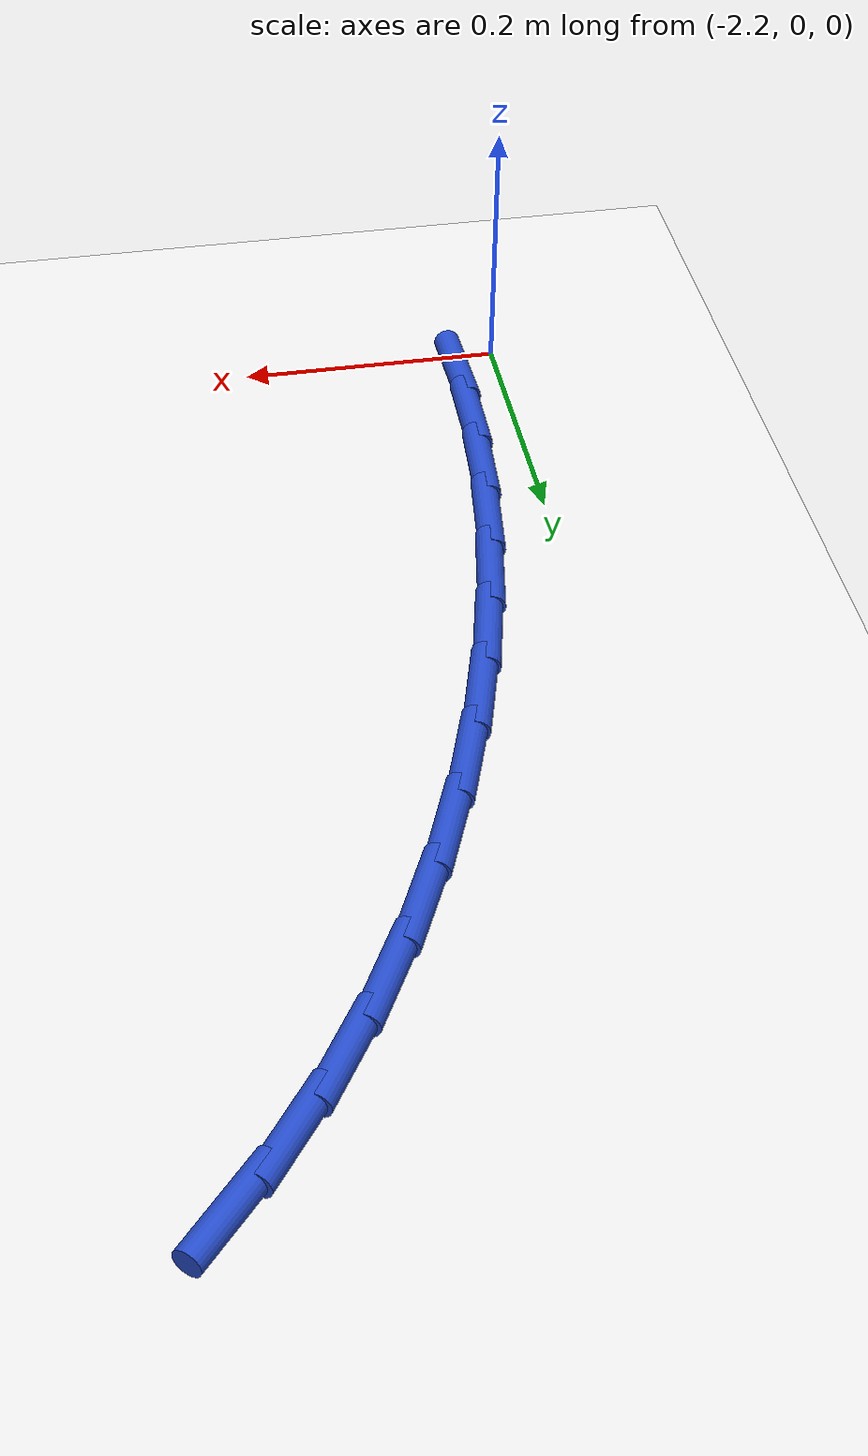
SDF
<sdf version="1.6">
 <world name="default">
  <model name="ground_plane">
   <static>1</static>
   <link name="link">
    <collision name="collision">
     <geometry><plane><normal>0 0 1</normal><size>100 100</size></plane></geometry>
     <surface><friction><ode><mu>100</mu><mu2>50</mu2></ode></friction></surface>
    </collision>
    <visual name="visual">
     <cast_shadows>0</cast_shadows>
     <geometry><plane><normal>0 0 1</normal><size>100 100</size></plane></geometry>
     <material>
      <script><uri>file://media/materials/scripts/gazebo.material</uri><name>Gazebo/WhiteGlow</name></script>
     </material>
    </visual>
   </link>
  </model>
  <model name="line">
   <link name="link_42">
    <pose>-1.8919158079031972 0.7861562082068733 0.01 0 1.57 0.836776364121595</pose>
    <collision name="collision">
     <geometry><cylinder><radius>0.01</radius><length>0.08</length></cylinder></geometry>
    </collision>
    <visual name="visual">
     <material>
      <script><name>Gazebo/Blue</name><uri>file://media/materials/scripts/gazebo.material</uri></script>
     </material>
     <geometry><cylinder><radius>0.01</radius><length>0.08</length></cylinder></geometry>
    </visual>
   </link>
   <link name="link_43">
    <pose>-1.932794158205043 0.7408457304527458 0.01 0 1.57 0.921118722958242</pose>
    <collision name="collision">
     <geometry><cylinder><radius>0.01</radius><length>0.08</length></cylinder></geometry>
    </collision>
    <visual name="visual">
     <material>
      <script><name>Gazebo/Blue</name><uri>file://media/materials/scripts/gazebo.material</uri></script>
     </material>
     <geometry><cylinder><radius>0.01</radius><length>0.08</length></cylinder></geometry>
    </visual>
   </link>
   <link name="link_44">
    <pose>-1.9704445050640218 0.691285964169938 0.01 0 1.57 0.9962731484818209</pose>
    <collision name="collision">
     <geometry><cylinder><radius>0.01</radius><length>0.08</length></cylinder></geometry>
    </collision>
    <visual name="visual">
     <material>
      <script><name>Gazebo/Blue</name><uri>file://media/materials/scripts/gazebo.material</uri></script>
     </material>
     <geometry><cylinder><radius>0.01</radius><length>0.08</length></cylinder></geometry>
    </visual>
   </link>
   <link name="link_45">
    <pose>-2.004835697317241 0.6381613757713207 0.01 0 1.57 1.0638748254121067</pose>
    <collision name="collision">
     <geometry><cylinder><radius>0.01</radius><length>0.08</length></cylinder></geometry>
    </collision>
    <visual name="visual">
     <material>
      <script><name>Gazebo/Blue</name><uri>file://media/materials/scripts/gazebo.material</uri></script>
     </material>
     <geometry><cylinder><radius>0.01</radius><length>0.08</length></cylinder></geometry>
    </visual>
   </link>
   <link name="link_46">
    <pose>-2.0359365838018104 0.582156431669765 0.01 0 1.57 1.1254706664726304</pose>
    <collision name="collision">
     <geometry><cylinder><radius>0.01</radius><length>0.08</length></cylinder></geometry>
    </collision>
    <visual name="visual">
     <material>
      <script><name>Gazebo/Blue</name><uri>file://media/materials/scripts/gazebo.material</uri></script>
     </material>
     <geometry><cylinder><radius>0.01</radius><length>0.08</length></cylinder></geometry>
    </visual>
   </link>
   <link name="link_47">
    <pose>-2.0637160133548367 0.523955598278142 0.01 0 1.57 1.1824908588176397</pose>
    <collision name="collision">
     <geometry><cylinder><radius>0.01</radius><length>0.08</length></cylinder></geometry>
    </collision>
    <visual name="visual">
     <material>
      <script><name>Gazebo/Blue</name><uri>file://media/materials/scripts/gazebo.material</uri></script>
     </material>
     <geometry><cylinder><radius>0.01</radius><length>0.08</length></cylinder></geometry>
    </visual>
   </link>
   <link name="link_48">
    <pose>-2.088142836278697 0.4642433289837626 0.01 0 1.57 1.2366295602891493</pose>
    <collision name="collision">
     <geometry><cylinder><radius>0.01</radius><length>0.08</length></cylinder></geometry>
    </collision>
    <visual name="visual">
     <material>
      <script><name>Gazebo/Blue</name><uri>file://media/materials/scripts/gazebo.material</uri></script>
     </material>
     <geometry><cylinder><radius>0.01</radius><length>0.08</length></cylinder></geometry>
    </visual>
   </link>
   <link name="link_49">
    <pose>-2.109197701014994 0.4035991971739781 0.01 0 1.57 1.289878252768215</pose>
    <collision name="collision">
     <geometry><cylinder><radius>0.01</radius><length>0.08</length></cylinder></geometry>
    </collision>
    <visual name="visual">
     <material>
      <script><name>Gazebo/Blue</name><uri>file://media/materials/scripts/gazebo.material</uri></script>
     </material>
     <geometry><cylinder><radius>0.01</radius><length>0.08</length></cylinder></geometry>
    </visual>
   </link>
   <link name="link_50">
    <pose>-2.1269015895814514 0.3422442294025233 0.01 0 1.57 1.3425724713213827</pose>
    <collision name="collision">
     <geometry><cylinder><radius>0.01</radius><length>0.08</length></cylinder></geometry>
    </collision>
    <visual name="visual">
     <material>
      <script><name>Gazebo/Blue</name><uri>file://media/materials/scripts/gazebo.material</uri></script>
     </material>
     <geometry><cylinder><radius>0.01</radius><length>0.08</length></cylinder></geometry>
    </visual>
   </link>
   <link name="link_51">
    <pose>-2.141284095759047 0.2803228976315441 0.01 0 1.57 1.3947404330947066</pose>
    <collision name="collision">
     <geometry><cylinder><radius>0.01</radius><length>0.08</length></cylinder></geometry>
    </collision>
    <visual name="visual">
     <material>
      <script><name>Gazebo/Blue</name><uri>file://media/materials/scripts/gazebo.material</uri></script>
     </material>
     <geometry><cylinder><radius>0.01</radius><length>0.08</length></cylinder></geometry>
    </visual>
   </link>
   <link name="link_52">
    <pose>-2.152374813328761 0.21797967382318645 0.01 0 1.57 1.4464265166965997</pose>
    <collision name="collision">
     <geometry><cylinder><radius>0.01</radius><length>0.08</length></cylinder></geometry>
    </collision>
    <visual name="visual">
     <material>
      <script><name>Gazebo/Blue</name><uri>file://media/materials/scripts/gazebo.material</uri></script>
     </material>
     <geometry><cylinder><radius>0.01</radius><length>0.08</length></cylinder></geometry>
    </visual>
   </link>
   <link name="link_53">
    <pose>-2.1602033360715716 0.15535902993959622 0.01 0 1.57 1.4976892618679012</pose>
    <collision name="collision">
     <geometry><cylinder><radius>0.01</radius><length>0.08</length></cylinder></geometry>
    </collision>
    <visual name="visual">
     <material>
      <script><name>Gazebo/Blue</name><uri>file://media/materials/scripts/gazebo.material</uri></script>
     </material>
     <geometry><cylinder><radius>0.01</radius><length>0.08</length></cylinder></geometry>
    </visual>
   </link>
   <link name="link_54">
    <pose>-2.1647992577684576 0.09260543794291923 0.01 0 1.57 1.548599327247205</pose>
    <collision name="collision">
     <geometry><cylinder><radius>0.01</radius><length>0.08</length></cylinder></geometry>
    </collision>
    <visual name="visual">
     <material>
      <script><name>Gazebo/Blue</name><uri>file://media/materials/scripts/gazebo.material</uri></script>
     </material>
     <geometry><cylinder><radius>0.01</radius><length>0.08</length></cylinder></geometry>
    </visual>
   </link>
   <link name="link_55">
    <pose>-2.1661921722003985 0.02986336979530174 0.01 0 1.57 -1.5423551915890195</pose>
    <collision name="collision">
     <geometry><cylinder><radius>0.01</radius><length>0.08</length></cylinder></geometry>
    </collision>
    <visual name="visual">
     <material>
      <script><name>Gazebo/Blue</name><uri>file://media/materials/scripts/gazebo.material</uri></script>
     </material>
     <geometry><cylinder><radius>0.01</radius><length>0.08</length></cylinder></geometry>
    </visual>
   </link>
  </model>
 </world>
</sdf>
